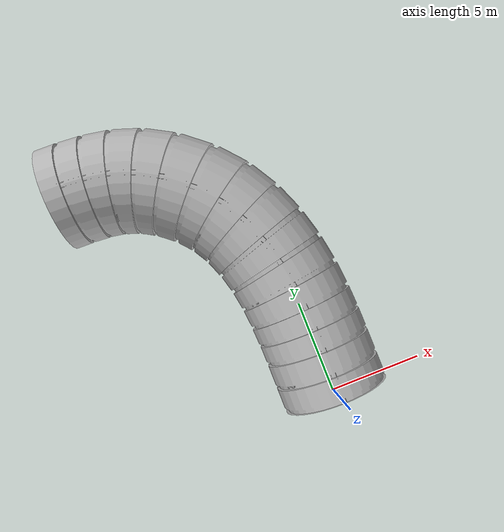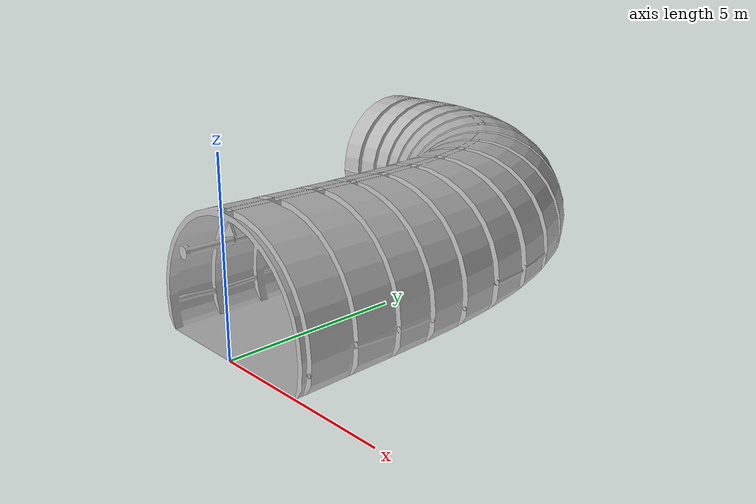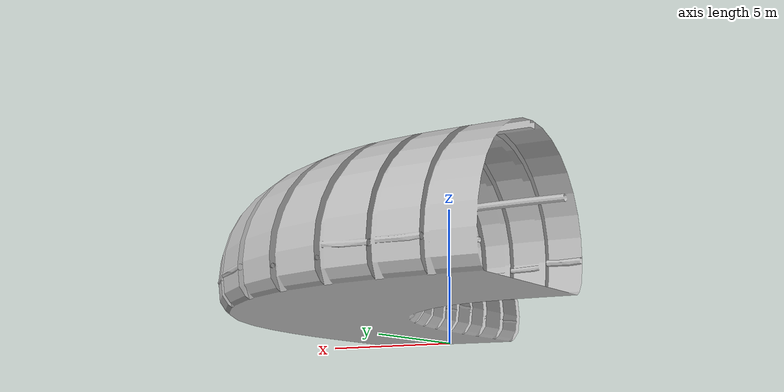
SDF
<?xml version="1.0" ?>
<sdf version="1.6">
  <model name="tunnel_corner_left">
    <static>true</static>
    <link name="link">
      <collision name="collision">
        <geometry>
          <mesh>
            <scale>0.01 0.01 0.01</scale>
            <uri>model://tunnel_corner_left/meshes/Tunnel_Corner_Left.obj</uri>
          </mesh>
        </geometry>
      </collision>
      <visual name="visual">
        <geometry>
          <mesh>
            <scale>0.01 0.01 0.01</scale>
            <uri>model://tunnel_corner_left/meshes/Tunnel_Corner_Left.obj</uri>
          </mesh>
        </geometry>
      </visual>
    </link>
  </model>
</sdf>
